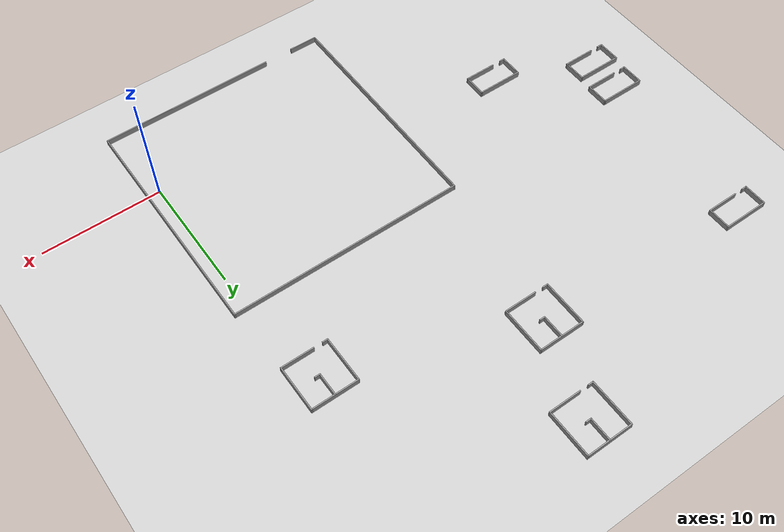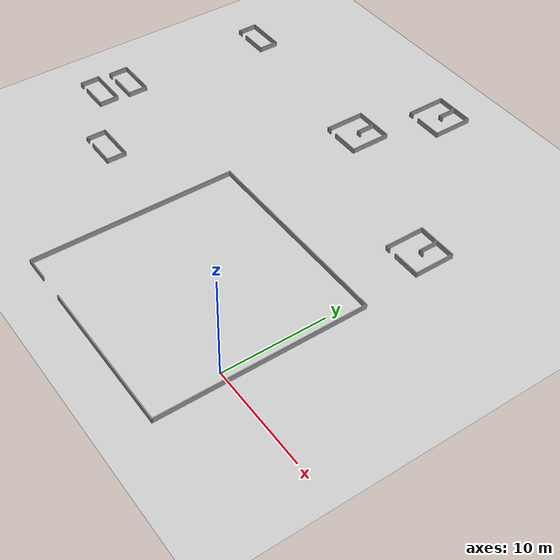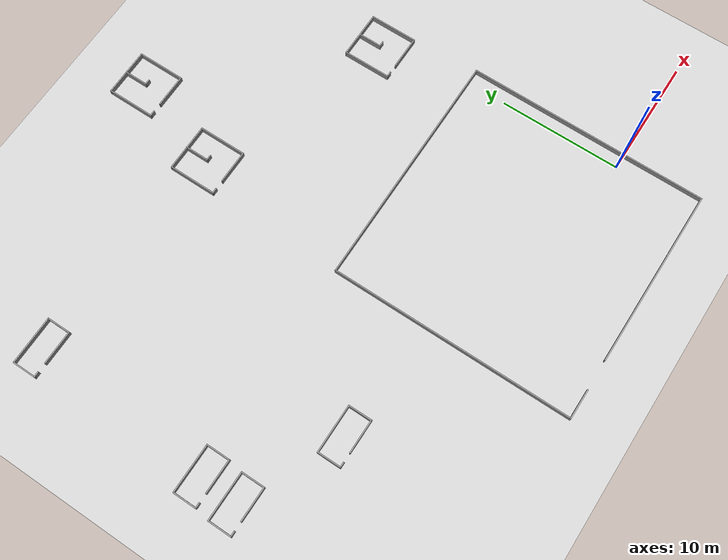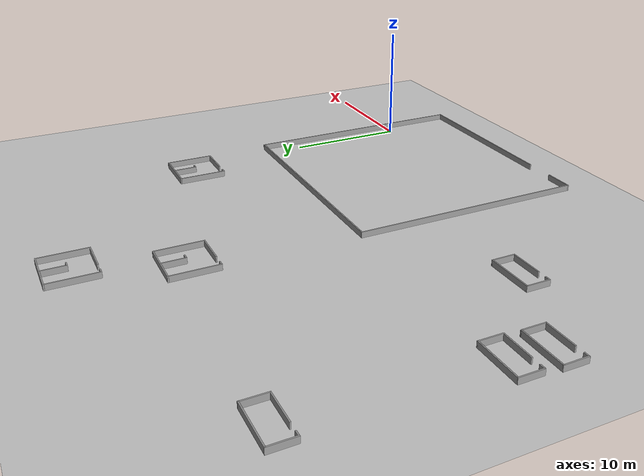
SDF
<sdf version="1.6">
 <world name="default">
  <model name="ground_plane">
   <static>1</static>
   <link name="link">
    <collision name="collision">
     <geometry><plane><normal>0 0 1</normal><size>80 80</size></plane></geometry>
     <surface>
      <contact><collide_bitmask>65535</collide_bitmask></contact>
      <friction><ode><mu>100</mu><mu2>50</mu2></ode></friction>
     </surface>
     <max_contacts>15</max_contacts>
    </collision>
    <visual name="visual">
     <cast_shadows>0</cast_shadows>
     <geometry><plane><normal>0 0 1</normal><size>80 80</size></plane></geometry>
     <material>
      <script><uri>file://media/materials/scripts/gazebo.material</uri><name>Gazebo/Grey</name></script>
     </material>
    </visual>
   </link>
  </model>
  <model name="shape4">
   <pose>-1.3 20.8 0 0 -0 0</pose>
   <link name="Wall_0">
    <collision name="Wall_0_Collision">
     <geometry><box><size>4 0.1 0.5</size></box></geometry>
     <pose>0 0 0.25 0 -0 0</pose>
    </collision>
    <visual name="Wall_0_Visual">
     <pose>0 0 0.25 0 -0 0</pose>
     <geometry><box><size>4 0.1 0.5</size></box></geometry>
     <material>
      <script><uri>file://media/materials/scripts/gazebo.material</uri><name>Gazebo/Grey</name></script>
      <ambient>1 1 1 1</ambient>
     </material>
     <meta><layer>0</layer></meta>
    </visual>
    <pose>-1.95 0 0 0 -0 -1.5708</pose>
   </link>
   <link name="Wall_1">
    <collision name="Wall_1_Collision">
     <geometry><box><size>0.5 0.1 0.5</size></box></geometry>
     <pose>0 0 0.25 0 -0 0</pose>
    </collision>
    <visual name="Wall_1_Visual">
     <pose>0 0 0.25 0 -0 0</pose>
     <geometry><box><size>0.5 0.1 0.5</size></box></geometry>
     <material>
      <script><uri>file://media/materials/scripts/gazebo.material</uri><name>Gazebo/Grey</name></script>
      <ambient>1 1 1 1</ambient>
     </material>
     <meta><layer>0</layer></meta>
    </visual>
    <pose>-1.75 -1.95 0 0 -0 0</pose>
   </link>
   <link name="Wall_3">
    <collision name="Wall_3_Collision">
     <geometry><box><size>4 0.1 0.5</size></box></geometry>
     <pose>0 0 0.25 0 -0 0</pose>
    </collision>
    <visual name="Wall_3_Visual">
     <pose>0 0 0.25 0 -0 0</pose>
     <geometry><box><size>4 0.1 0.5</size></box></geometry>
     <material>
      <script><uri>file://media/materials/scripts/gazebo.material</uri><name>Gazebo/Grey</name></script>
      <ambient>1 1 1 1</ambient>
     </material>
     <meta><layer>0</layer></meta>
    </visual>
    <pose>0 1.95 0 0 -0 0</pose>
   </link>
   <link name="Wall_4">
    <collision name="Wall_4_Collision">
     <geometry><box><size>4 0.1 0.5</size></box></geometry>
     <pose>0 0 0.25 0 -0 0</pose>
    </collision>
    <visual name="Wall_4_Visual">
     <pose>0 0 0.25 0 -0 0</pose>
     <geometry><box><size>4 0.1 0.5</size></box></geometry>
     <material>
      <script><uri>file://media/materials/scripts/gazebo.material</uri><name>Gazebo/Grey</name></script>
      <ambient>1 1 1 1</ambient>
     </material>
     <meta><layer>0</layer></meta>
    </visual>
    <pose>1.95 0 0 0 -0 -1.5708</pose>
   </link>
   <link name="Wall_5">
    <collision name="Wall_5_Collision">
     <geometry><box><size>2.8 0.1 0.5</size></box></geometry>
     <pose>0 0 0.25 0 -0 0</pose>
    </collision>
    <visual name="Wall_5_Visual">
     <pose>0 0 0.25 0 -0 0</pose>
     <geometry><box><size>2.8 0.1 0.5</size></box></geometry>
     <material>
      <script><uri>file://media/materials/scripts/gazebo.material</uri><name>Gazebo/Grey</name></script>
      <ambient>1 1 1 1</ambient>
     </material>
     <meta><layer>0</layer></meta>
    </visual>
    <pose>0.6 -1.95 0 0 -0 3.14159</pose>
   </link>
   <link name="Wall_7">
    <collision name="Wall_7_Collision">
     <geometry><box><size>2 0.1 0.5</size></box></geometry>
     <pose>0 0 0.25 0 -0 0</pose>
    </collision>
    <visual name="Wall_7_Visual">
     <pose>0 0 0.25 0 -0 0</pose>
     <geometry><box><size>2 0.1 0.5</size></box></geometry>
     <material>
      <script><uri>file://media/materials/scripts/gazebo.material</uri><name>Gazebo/Grey</name></script>
      <ambient>1 1 1 1</ambient>
     </material>
     <meta><layer>0</layer></meta>
    </visual>
    <pose>0.015 0.991 0 0 -0 -1.5708</pose>
   </link>
   <link name="Wall_8">
    <collision name="Wall_8_Collision">
     <geometry><box><size>0.5 0.1 0.5</size></box></geometry>
     <pose>0 0 0.25 0 -0 0</pose>
    </collision>
    <visual name="Wall_8_Visual">
     <pose>0 0 0.25 0 -0 0</pose>
     <geometry><box><size>0.5 0.1 0.5</size></box></geometry>
     <material>
      <script><uri>file://media/materials/scripts/gazebo.material</uri><name>Gazebo/Grey</name></script>
      <ambient>1 1 1 1</ambient>
     </material>
     <meta><layer>0</layer></meta>
    </visual>
    <pose>0.215 0.041 0 0 -0 0</pose>
   </link>
   <static>1</static>
  </model>
  <model name="shape2">
   <pose>-28.6 5.9 0 0 -0 0</pose>
   <link name="Wall_0">
    <collision name="Wall_0_Collision">
     <geometry><box><size>3.98685 0.1 0.5</size></box></geometry>
     <pose>0 0 0.25 0 -0 0</pose>
    </collision>
    <visual name="Wall_0_Visual">
     <pose>0 0 0.25 0 -0 0</pose>
     <geometry><box><size>3.98685 0.1 0.5</size></box></geometry>
     <material>
      <script><uri>file://media/materials/scripts/gazebo.material</uri><name>Gazebo/Grey</name></script>
      <ambient>1 1 1 1</ambient>
     </material>
     <meta><layer>0</layer></meta>
    </visual>
    <pose>0.003288 0.95 0 0 -0 0</pose>
   </link>
   <link name="Wall_1">
    <collision name="Wall_1_Collision">
     <geometry><box><size>2 0.1 0.5</size></box></geometry>
     <pose>0 0 0.25 0 -0 0</pose>
    </collision>
    <visual name="Wall_1_Visual">
     <pose>0 0 0.25 0 -0 0</pose>
     <geometry><box><size>2 0.1 0.5</size></box></geometry>
     <material>
      <script><uri>file://media/materials/scripts/gazebo.material</uri><name>Gazebo/Grey</name></script>
      <ambient>1 1 1 1</ambient>
     </material>
     <meta><layer>0</layer></meta>
    </visual>
    <pose>1.94671 0 0 0 -0 -1.5708</pose>
   </link>
   <link name="Wall_2">
    <collision name="Wall_2_Collision">
     <geometry><box><size>2.8 0.1 0.5</size></box></geometry>
     <pose>0 0 0.25 0 -0 0</pose>
    </collision>
    <visual name="Wall_2_Visual">
     <pose>0 0 0.25 0 -0 0</pose>
     <geometry><box><size>2.8 0.1 0.5</size></box></geometry>
     <material>
      <script><uri>file://media/materials/scripts/gazebo.material</uri><name>Gazebo/Grey</name></script>
      <ambient>1 1 1 1</ambient>
     </material>
     <meta><layer>0</layer></meta>
    </visual>
    <pose>0.596712 -0.95 0 0 -0 3.14159</pose>
   </link>
   <link name="Wall_4">
    <collision name="Wall_4_Collision">
     <geometry><box><size>2 0.1 0.5</size></box></geometry>
     <pose>0 0 0.25 0 -0 0</pose>
    </collision>
    <visual name="Wall_4_Visual">
     <pose>0 0 0.25 0 -0 0</pose>
     <geometry><box><size>2 0.1 0.5</size></box></geometry>
     <material>
      <script><uri>file://media/materials/scripts/gazebo.material</uri><name>Gazebo/Grey</name></script>
      <ambient>1 1 1 1</ambient>
     </material>
     <meta><layer>0</layer></meta>
    </visual>
    <pose>-1.94671 0 0 0 -0 -1.5708</pose>
   </link>
   <link name="Wall_5">
    <collision name="Wall_5_Collision">
     <geometry><box><size>0.5 0.1 0.5</size></box></geometry>
     <pose>0 0 0.25 0 -0 0</pose>
    </collision>
    <visual name="Wall_5_Visual">
     <pose>0 0 0.25 0 -0 0</pose>
     <geometry><box><size>0.5 0.1 0.5</size></box></geometry>
     <material>
      <script><uri>file://media/materials/scripts/gazebo.material</uri><name>Gazebo/Grey</name></script>
      <ambient>1 1 1 1</ambient>
     </material>
     <meta><layer>0</layer></meta>
    </visual>
    <pose>-1.74671 -0.95 0 0 -0 0</pose>
   </link>
   <static>1</static>
  </model>
  <model name="shape8">
   <pose>-8.9 3.3 0 0 -0 0</pose>
   <link name="Wall_21">
    <collision name="Wall_21_Collision">
     <geometry><box><size>2.5 0.1 0.5</size></box></geometry>
     <pose>0 0 0.25 0 -0 0</pose>
    </collision>
    <visual name="Wall_21_Visual">
     <pose>0 0 0.25 0 -0 0</pose>
     <geometry><box><size>2.5 0.1 0.5</size></box></geometry>
     <material>
      <script><uri>file://media/materials/scripts/gazebo.material</uri><name>Gazebo/Grey</name></script>
      <ambient>1 1 1 1</ambient>
     </material>
     <meta><layer>0</layer></meta>
    </visual>
    <pose>-8.75003 -9.94997 0 0 -0 3.14159</pose>
   </link>
   <link name="Wall_22">
    <collision name="Wall_22_Collision">
     <geometry><box><size>20 0.1 0.5</size></box></geometry>
     <pose>0 0 0.25 0 -0 0</pose>
    </collision>
    <visual name="Wall_22_Visual">
     <pose>0 0 0.25 0 -0 0</pose>
     <geometry><box><size>20 0.1 0.5</size></box></geometry>
     <material>
      <script><uri>file://media/materials/scripts/gazebo.material</uri><name>Gazebo/Grey</name></script>
      <ambient>1 1 1 1</ambient>
     </material>
     <meta><layer>0</layer></meta>
    </visual>
    <pose>-9.95003 3.3e-05 0 0 -0 1.5708</pose>
   </link>
   <link name="Wall_23">
    <collision name="Wall_23_Collision">
     <geometry><box><size>20 0.1 0.5</size></box></geometry>
     <pose>0 0 0.25 0 -0 0</pose>
    </collision>
    <visual name="Wall_23_Visual">
     <pose>0 0 0.25 0 -0 0</pose>
     <geometry><box><size>20 0.1 0.5</size></box></geometry>
     <material>
      <script><uri>file://media/materials/scripts/gazebo.material</uri><name>Gazebo/Grey</name></script>
      <ambient>1 1 1 1</ambient>
     </material>
     <meta><layer>0</layer></meta>
    </visual>
    <pose>-3e-05 9.95003 0 0 -0 0</pose>
   </link>
   <link name="Wall_24">
    <collision name="Wall_24_Collision">
     <geometry><box><size>20 0.1 0.5</size></box></geometry>
     <pose>0 0 0.25 0 -0 0</pose>
    </collision>
    <visual name="Wall_24_Visual">
     <pose>0 0 0.25 0 -0 0</pose>
     <geometry><box><size>20 0.1 0.5</size></box></geometry>
     <material>
      <script><uri>file://media/materials/scripts/gazebo.material</uri><name>Gazebo/Grey</name></script>
      <ambient>1 1 1 1</ambient>
     </material>
     <meta><layer>0</layer></meta>
    </visual>
    <pose>9.94997 3.3e-05 0 0 -0 -1.5708</pose>
   </link>
   <link name="Wall_25">
    <collision name="Wall_25_Collision">
     <geometry><box><size>15 0.1 0.5</size></box></geometry>
     <pose>0 0 0.25 0 -0 0</pose>
    </collision>
    <visual name="Wall_25_Visual">
     <pose>0 0 0.25 0 -0 0</pose>
     <geometry><box><size>15 0.1 0.5</size></box></geometry>
     <material>
      <script><uri>file://media/materials/scripts/gazebo.material</uri><name>Gazebo/Grey</name></script>
      <ambient>1 1 1 1</ambient>
     </material>
     <meta><layer>0</layer></meta>
    </visual>
    <pose>2.49997 -9.93997 0 0 -0 3.14025</pose>
   </link>
   <static>1</static>
  </model>
  <model name="shape2">
   <pose>-36.3 12.6 0 0 -0 0</pose>
   <link name="Wall_0">
    <collision name="Wall_0_Collision">
     <geometry><box><size>3.98685 0.1 0.5</size></box></geometry>
     <pose>0 0 0.25 0 -0 0</pose>
    </collision>
    <visual name="Wall_0_Visual">
     <pose>0 0 0.25 0 -0 0</pose>
     <geometry><box><size>3.98685 0.1 0.5</size></box></geometry>
     <material>
      <script><uri>file://media/materials/scripts/gazebo.material</uri><name>Gazebo/Grey</name></script>
      <ambient>1 1 1 1</ambient>
     </material>
     <meta><layer>0</layer></meta>
    </visual>
    <pose>0.003288 0.95 0 0 -0 0</pose>
   </link>
   <link name="Wall_1">
    <collision name="Wall_1_Collision">
     <geometry><box><size>2 0.1 0.5</size></box></geometry>
     <pose>0 0 0.25 0 -0 0</pose>
    </collision>
    <visual name="Wall_1_Visual">
     <pose>0 0 0.25 0 -0 0</pose>
     <geometry><box><size>2 0.1 0.5</size></box></geometry>
     <material>
      <script><uri>file://media/materials/scripts/gazebo.material</uri><name>Gazebo/Grey</name></script>
      <ambient>1 1 1 1</ambient>
     </material>
     <meta><layer>0</layer></meta>
    </visual>
    <pose>1.94671 0 0 0 -0 -1.5708</pose>
   </link>
   <link name="Wall_2">
    <collision name="Wall_2_Collision">
     <geometry><box><size>2.8 0.1 0.5</size></box></geometry>
     <pose>0 0 0.25 0 -0 0</pose>
    </collision>
    <visual name="Wall_2_Visual">
     <pose>0 0 0.25 0 -0 0</pose>
     <geometry><box><size>2.8 0.1 0.5</size></box></geometry>
     <material>
      <script><uri>file://media/materials/scripts/gazebo.material</uri><name>Gazebo/Grey</name></script>
      <ambient>1 1 1 1</ambient>
     </material>
     <meta><layer>0</layer></meta>
    </visual>
    <pose>0.596712 -0.95 0 0 -0 3.14159</pose>
   </link>
   <link name="Wall_4">
    <collision name="Wall_4_Collision">
     <geometry><box><size>2 0.1 0.5</size></box></geometry>
     <pose>0 0 0.25 0 -0 0</pose>
    </collision>
    <visual name="Wall_4_Visual">
     <pose>0 0 0.25 0 -0 0</pose>
     <geometry><box><size>2 0.1 0.5</size></box></geometry>
     <material>
      <script><uri>file://media/materials/scripts/gazebo.material</uri><name>Gazebo/Grey</name></script>
      <ambient>1 1 1 1</ambient>
     </material>
     <meta><layer>0</layer></meta>
    </visual>
    <pose>-1.94671 0 0 0 -0 -1.5708</pose>
   </link>
   <link name="Wall_5">
    <collision name="Wall_5_Collision">
     <geometry><box><size>0.5 0.1 0.5</size></box></geometry>
     <pose>0 0 0.25 0 -0 0</pose>
    </collision>
    <visual name="Wall_5_Visual">
     <pose>0 0 0.25 0 -0 0</pose>
     <geometry><box><size>0.5 0.1 0.5</size></box></geometry>
     <material>
      <script><uri>file://media/materials/scripts/gazebo.material</uri><name>Gazebo/Grey</name></script>
      <ambient>1 1 1 1</ambient>
     </material>
     <meta><layer>0</layer></meta>
    </visual>
    <pose>-1.74671 -0.95 0 0 -0 0</pose>
   </link>
   <static>1</static>
  </model>
  <model name="shape4">
   <pose>-16.9 26.4 0 0 -0 0</pose>
   <link name="Wall_0">
    <collision name="Wall_0_Collision">
     <geometry><box><size>4 0.1 0.5</size></box></geometry>
     <pose>0 0 0.25 0 -0 0</pose>
    </collision>
    <visual name="Wall_0_Visual">
     <pose>0 0 0.25 0 -0 0</pose>
     <geometry><box><size>4 0.1 0.5</size></box></geometry>
     <material>
      <script><uri>file://media/materials/scripts/gazebo.material</uri><name>Gazebo/Grey</name></script>
      <ambient>1 1 1 1</ambient>
     </material>
     <meta><layer>0</layer></meta>
    </visual>
    <pose>-1.95 0 0 0 -0 -1.5708</pose>
   </link>
   <link name="Wall_1">
    <collision name="Wall_1_Collision">
     <geometry><box><size>0.5 0.1 0.5</size></box></geometry>
     <pose>0 0 0.25 0 -0 0</pose>
    </collision>
    <visual name="Wall_1_Visual">
     <pose>0 0 0.25 0 -0 0</pose>
     <geometry><box><size>0.5 0.1 0.5</size></box></geometry>
     <material>
      <script><uri>file://media/materials/scripts/gazebo.material</uri><name>Gazebo/Grey</name></script>
      <ambient>1 1 1 1</ambient>
     </material>
     <meta><layer>0</layer></meta>
    </visual>
    <pose>-1.75 -1.95 0 0 -0 0</pose>
   </link>
   <link name="Wall_3">
    <collision name="Wall_3_Collision">
     <geometry><box><size>4 0.1 0.5</size></box></geometry>
     <pose>0 0 0.25 0 -0 0</pose>
    </collision>
    <visual name="Wall_3_Visual">
     <pose>0 0 0.25 0 -0 0</pose>
     <geometry><box><size>4 0.1 0.5</size></box></geometry>
     <material>
      <script><uri>file://media/materials/scripts/gazebo.material</uri><name>Gazebo/Grey</name></script>
      <ambient>1 1 1 1</ambient>
     </material>
     <meta><layer>0</layer></meta>
    </visual>
    <pose>0 1.95 0 0 -0 0</pose>
   </link>
   <link name="Wall_4">
    <collision name="Wall_4_Collision">
     <geometry><box><size>4 0.1 0.5</size></box></geometry>
     <pose>0 0 0.25 0 -0 0</pose>
    </collision>
    <visual name="Wall_4_Visual">
     <pose>0 0 0.25 0 -0 0</pose>
     <geometry><box><size>4 0.1 0.5</size></box></geometry>
     <material>
      <script><uri>file://media/materials/scripts/gazebo.material</uri><name>Gazebo/Grey</name></script>
      <ambient>1 1 1 1</ambient>
     </material>
     <meta><layer>0</layer></meta>
    </visual>
    <pose>1.95 0 0 0 -0 -1.5708</pose>
   </link>
   <link name="Wall_5">
    <collision name="Wall_5_Collision">
     <geometry><box><size>2.8 0.1 0.5</size></box></geometry>
     <pose>0 0 0.25 0 -0 0</pose>
    </collision>
    <visual name="Wall_5_Visual">
     <pose>0 0 0.25 0 -0 0</pose>
     <geometry><box><size>2.8 0.1 0.5</size></box></geometry>
     <material>
      <script><uri>file://media/materials/scripts/gazebo.material</uri><name>Gazebo/Grey</name></script>
      <ambient>1 1 1 1</ambient>
     </material>
     <meta><layer>0</layer></meta>
    </visual>
    <pose>0.6 -1.95 0 0 -0 3.14159</pose>
   </link>
   <link name="Wall_7">
    <collision name="Wall_7_Collision">
     <geometry><box><size>2 0.1 0.5</size></box></geometry>
     <pose>0 0 0.25 0 -0 0</pose>
    </collision>
    <visual name="Wall_7_Visual">
     <pose>0 0 0.25 0 -0 0</pose>
     <geometry><box><size>2 0.1 0.5</size></box></geometry>
     <material>
      <script><uri>file://media/materials/scripts/gazebo.material</uri><name>Gazebo/Grey</name></script>
      <ambient>1 1 1 1</ambient>
     </material>
     <meta><layer>0</layer></meta>
    </visual>
    <pose>0.015 0.991 0 0 -0 -1.5708</pose>
   </link>
   <link name="Wall_8">
    <collision name="Wall_8_Collision">
     <geometry><box><size>0.5 0.1 0.5</size></box></geometry>
     <pose>0 0 0.25 0 -0 0</pose>
    </collision>
    <visual name="Wall_8_Visual">
     <pose>0 0 0.25 0 -0 0</pose>
     <geometry><box><size>0.5 0.1 0.5</size></box></geometry>
     <material>
      <script><uri>file://media/materials/scripts/gazebo.material</uri><name>Gazebo/Grey</name></script>
      <ambient>1 1 1 1</ambient>
     </material>
     <meta><layer>0</layer></meta>
    </visual>
    <pose>0.215 0.041 0 0 -0 0</pose>
   </link>
   <static>1</static>
  </model>
  <model name="shape2">
   <pose>-36.5 9.5 0 0 -0 0</pose>
   <link name="Wall_0">
    <collision name="Wall_0_Collision">
     <geometry><box><size>3.98685 0.1 0.5</size></box></geometry>
     <pose>0 0 0.25 0 -0 0</pose>
    </collision>
    <visual name="Wall_0_Visual">
     <pose>0 0 0.25 0 -0 0</pose>
     <geometry><box><size>3.98685 0.1 0.5</size></box></geometry>
     <material>
      <script><uri>file://media/materials/scripts/gazebo.material</uri><name>Gazebo/Grey</name></script>
      <ambient>1 1 1 1</ambient>
     </material>
     <meta><layer>0</layer></meta>
    </visual>
    <pose>0.003288 0.95 0 0 -0 0</pose>
   </link>
   <link name="Wall_1">
    <collision name="Wall_1_Collision">
     <geometry><box><size>2 0.1 0.5</size></box></geometry>
     <pose>0 0 0.25 0 -0 0</pose>
    </collision>
    <visual name="Wall_1_Visual">
     <pose>0 0 0.25 0 -0 0</pose>
     <geometry><box><size>2 0.1 0.5</size></box></geometry>
     <material>
      <script><uri>file://media/materials/scripts/gazebo.material</uri><name>Gazebo/Grey</name></script>
      <ambient>1 1 1 1</ambient>
     </material>
     <meta><layer>0</layer></meta>
    </visual>
    <pose>1.94671 0 0 0 -0 -1.5708</pose>
   </link>
   <link name="Wall_2">
    <collision name="Wall_2_Collision">
     <geometry><box><size>2.8 0.1 0.5</size></box></geometry>
     <pose>0 0 0.25 0 -0 0</pose>
    </collision>
    <visual name="Wall_2_Visual">
     <pose>0 0 0.25 0 -0 0</pose>
     <geometry><box><size>2.8 0.1 0.5</size></box></geometry>
     <material>
      <script><uri>file://media/materials/scripts/gazebo.material</uri><name>Gazebo/Grey</name></script>
      <ambient>1 1 1 1</ambient>
     </material>
     <meta><layer>0</layer></meta>
    </visual>
    <pose>0.596712 -0.95 0 0 -0 3.14159</pose>
   </link>
   <link name="Wall_4">
    <collision name="Wall_4_Collision">
     <geometry><box><size>2 0.1 0.5</size></box></geometry>
     <pose>0 0 0.25 0 -0 0</pose>
    </collision>
    <visual name="Wall_4_Visual">
     <pose>0 0 0.25 0 -0 0</pose>
     <geometry><box><size>2 0.1 0.5</size></box></geometry>
     <material>
      <script><uri>file://media/materials/scripts/gazebo.material</uri><name>Gazebo/Grey</name></script>
      <ambient>1 1 1 1</ambient>
     </material>
     <meta><layer>0</layer></meta>
    </visual>
    <pose>-1.94671 0 0 0 -0 -1.5708</pose>
   </link>
   <link name="Wall_5">
    <collision name="Wall_5_Collision">
     <geometry><box><size>0.5 0.1 0.5</size></box></geometry>
     <pose>0 0 0.25 0 -0 0</pose>
    </collision>
    <visual name="Wall_5_Visual">
     <pose>0 0 0.25 0 -0 0</pose>
     <geometry><box><size>0.5 0.1 0.5</size></box></geometry>
     <material>
      <script><uri>file://media/materials/scripts/gazebo.material</uri><name>Gazebo/Grey</name></script>
      <ambient>1 1 1 1</ambient>
     </material>
     <meta><layer>0</layer></meta>
    </visual>
    <pose>-1.74671 -0.95 0 0 -0 0</pose>
   </link>
   <static>1</static>
  </model>
  <model name="shape4">
   <pose>-14.3 34.3 0 0 -0 0</pose>
   <link name="Wall_0">
    <collision name="Wall_0_Collision">
     <geometry><box><size>4 0.1 0.5</size></box></geometry>
     <pose>0 0 0.25 0 -0 0</pose>
    </collision>
    <visual name="Wall_0_Visual">
     <pose>0 0 0.25 0 -0 0</pose>
     <geometry><box><size>4 0.1 0.5</size></box></geometry>
     <material>
      <script><uri>file://media/materials/scripts/gazebo.material</uri><name>Gazebo/Grey</name></script>
      <ambient>1 1 1 1</ambient>
     </material>
     <meta><layer>0</layer></meta>
    </visual>
    <pose>-1.95 0 0 0 -0 -1.5708</pose>
   </link>
   <link name="Wall_1">
    <collision name="Wall_1_Collision">
     <geometry><box><size>0.5 0.1 0.5</size></box></geometry>
     <pose>0 0 0.25 0 -0 0</pose>
    </collision>
    <visual name="Wall_1_Visual">
     <pose>0 0 0.25 0 -0 0</pose>
     <geometry><box><size>0.5 0.1 0.5</size></box></geometry>
     <material>
      <script><uri>file://media/materials/scripts/gazebo.material</uri><name>Gazebo/Grey</name></script>
      <ambient>1 1 1 1</ambient>
     </material>
     <meta><layer>0</layer></meta>
    </visual>
    <pose>-1.75 -1.95 0 0 -0 0</pose>
   </link>
   <link name="Wall_3">
    <collision name="Wall_3_Collision">
     <geometry><box><size>4 0.1 0.5</size></box></geometry>
     <pose>0 0 0.25 0 -0 0</pose>
    </collision>
    <visual name="Wall_3_Visual">
     <pose>0 0 0.25 0 -0 0</pose>
     <geometry><box><size>4 0.1 0.5</size></box></geometry>
     <material>
      <script><uri>file://media/materials/scripts/gazebo.material</uri><name>Gazebo/Grey</name></script>
      <ambient>1 1 1 1</ambient>
     </material>
     <meta><layer>0</layer></meta>
    </visual>
    <pose>0 1.95 0 0 -0 0</pose>
   </link>
   <link name="Wall_4">
    <collision name="Wall_4_Collision">
     <geometry><box><size>4 0.1 0.5</size></box></geometry>
     <pose>0 0 0.25 0 -0 0</pose>
    </collision>
    <visual name="Wall_4_Visual">
     <pose>0 0 0.25 0 -0 0</pose>
     <geometry><box><size>4 0.1 0.5</size></box></geometry>
     <material>
      <script><uri>file://media/materials/scripts/gazebo.material</uri><name>Gazebo/Grey</name></script>
      <ambient>1 1 1 1</ambient>
     </material>
     <meta><layer>0</layer></meta>
    </visual>
    <pose>1.95 0 0 0 -0 -1.5708</pose>
   </link>
   <link name="Wall_5">
    <collision name="Wall_5_Collision">
     <geometry><box><size>2.8 0.1 0.5</size></box></geometry>
     <pose>0 0 0.25 0 -0 0</pose>
    </collision>
    <visual name="Wall_5_Visual">
     <pose>0 0 0.25 0 -0 0</pose>
     <geometry><box><size>2.8 0.1 0.5</size></box></geometry>
     <material>
      <script><uri>file://media/materials/scripts/gazebo.material</uri><name>Gazebo/Grey</name></script>
      <ambient>1 1 1 1</ambient>
     </material>
     <meta><layer>0</layer></meta>
    </visual>
    <pose>0.6 -1.95 0 0 -0 3.14159</pose>
   </link>
   <link name="Wall_7">
    <collision name="Wall_7_Collision">
     <geometry><box><size>2 0.1 0.5</size></box></geometry>
     <pose>0 0 0.25 0 -0 0</pose>
    </collision>
    <visual name="Wall_7_Visual">
     <pose>0 0 0.25 0 -0 0</pose>
     <geometry><box><size>2 0.1 0.5</size></box></geometry>
     <material>
      <script><uri>file://media/materials/scripts/gazebo.material</uri><name>Gazebo/Grey</name></script>
      <ambient>1 1 1 1</ambient>
     </material>
     <meta><layer>0</layer></meta>
    </visual>
    <pose>0.015 0.991 0 0 -0 -1.5708</pose>
   </link>
   <link name="Wall_8">
    <collision name="Wall_8_Collision">
     <geometry><box><size>0.5 0.1 0.5</size></box></geometry>
     <pose>0 0 0.25 0 -0 0</pose>
    </collision>
    <visual name="Wall_8_Visual">
     <pose>0 0 0.25 0 -0 0</pose>
     <geometry><box><size>0.5 0.1 0.5</size></box></geometry>
     <material>
      <script><uri>file://media/materials/scripts/gazebo.material</uri><name>Gazebo/Grey</name></script>
      <ambient>1 1 1 1</ambient>
     </material>
     <meta><layer>0</layer></meta>
    </visual>
    <pose>0.215 0.041 0 0 -0 0</pose>
   </link>
   <static>1</static>
  </model>
  <model name="shape2">
   <pose>-35.3 27.6 0 0 -0 0</pose>
   <link name="Wall_0">
    <collision name="Wall_0_Collision">
     <geometry><box><size>3.98685 0.1 0.5</size></box></geometry>
     <pose>0 0 0.25 0 -0 0</pose>
    </collision>
    <visual name="Wall_0_Visual">
     <pose>0 0 0.25 0 -0 0</pose>
     <geometry><box><size>3.98685 0.1 0.5</size></box></geometry>
     <material>
      <script><uri>file://media/materials/scripts/gazebo.material</uri><name>Gazebo/Grey</name></script>
      <ambient>1 1 1 1</ambient>
     </material>
     <meta><layer>0</layer></meta>
    </visual>
    <pose>0.003288 0.95 0 0 -0 0</pose>
   </link>
   <link name="Wall_1">
    <collision name="Wall_1_Collision">
     <geometry><box><size>2 0.1 0.5</size></box></geometry>
     <pose>0 0 0.25 0 -0 0</pose>
    </collision>
    <visual name="Wall_1_Visual">
     <pose>0 0 0.25 0 -0 0</pose>
     <geometry><box><size>2 0.1 0.5</size></box></geometry>
     <material>
      <script><uri>file://media/materials/scripts/gazebo.material</uri><name>Gazebo/Grey</name></script>
      <ambient>1 1 1 1</ambient>
     </material>
     <meta><layer>0</layer></meta>
    </visual>
    <pose>1.94671 0 0 0 -0 -1.5708</pose>
   </link>
   <link name="Wall_2">
    <collision name="Wall_2_Collision">
     <geometry><box><size>2.8 0.1 0.5</size></box></geometry>
     <pose>0 0 0.25 0 -0 0</pose>
    </collision>
    <visual name="Wall_2_Visual">
     <pose>0 0 0.25 0 -0 0</pose>
     <geometry><box><size>2.8 0.1 0.5</size></box></geometry>
     <material>
      <script><uri>file://media/materials/scripts/gazebo.material</uri><name>Gazebo/Grey</name></script>
      <ambient>1 1 1 1</ambient>
     </material>
     <meta><layer>0</layer></meta>
    </visual>
    <pose>0.596712 -0.95 0 0 -0 3.14159</pose>
   </link>
   <link name="Wall_4">
    <collision name="Wall_4_Collision">
     <geometry><box><size>2 0.1 0.5</size></box></geometry>
     <pose>0 0 0.25 0 -0 0</pose>
    </collision>
    <visual name="Wall_4_Visual">
     <pose>0 0 0.25 0 -0 0</pose>
     <geometry><box><size>2 0.1 0.5</size></box></geometry>
     <material>
      <script><uri>file://media/materials/scripts/gazebo.material</uri><name>Gazebo/Grey</name></script>
      <ambient>1 1 1 1</ambient>
     </material>
     <meta><layer>0</layer></meta>
    </visual>
    <pose>-1.94671 0 0 0 -0 -1.5708</pose>
   </link>
   <link name="Wall_5">
    <collision name="Wall_5_Collision">
     <geometry><box><size>0.5 0.1 0.5</size></box></geometry>
     <pose>0 0 0.25 0 -0 0</pose>
    </collision>
    <visual name="Wall_5_Visual">
     <pose>0 0 0.25 0 -0 0</pose>
     <geometry><box><size>0.5 0.1 0.5</size></box></geometry>
     <material>
      <script><uri>file://media/materials/scripts/gazebo.material</uri><name>Gazebo/Grey</name></script>
      <ambient>1 1 1 1</ambient>
     </material>
     <meta><layer>0</layer></meta>
    </visual>
    <pose>-1.74671 -0.95 0 0 -0 0</pose>
   </link>
   <static>1</static>
  </model>
 </world>
</sdf>
